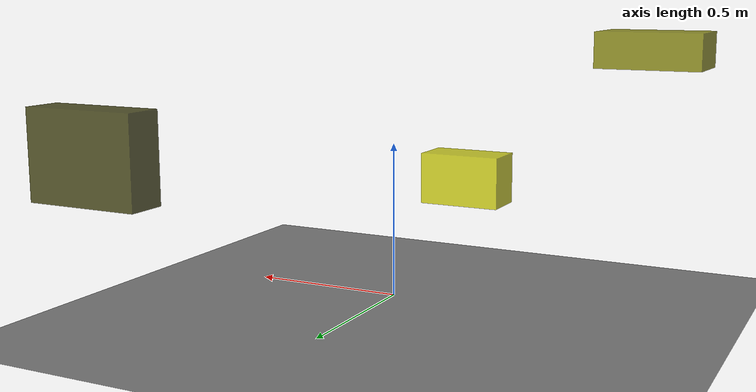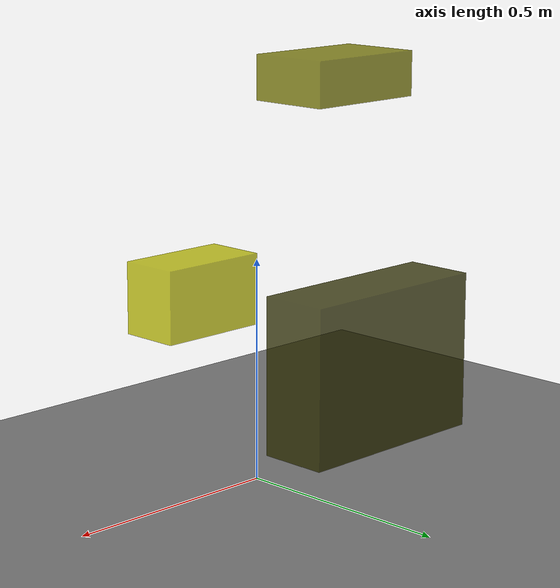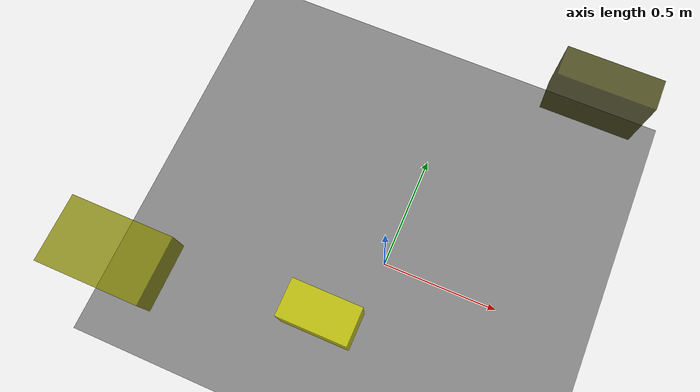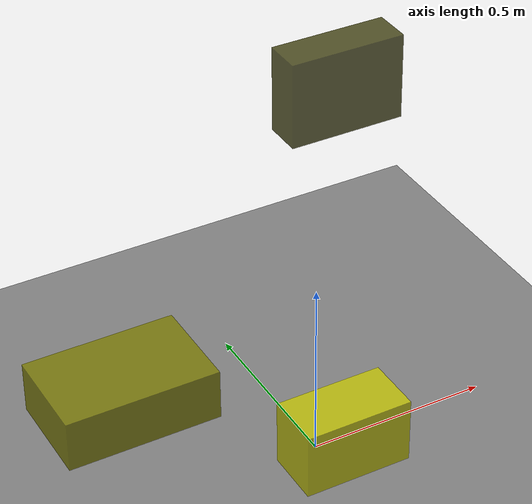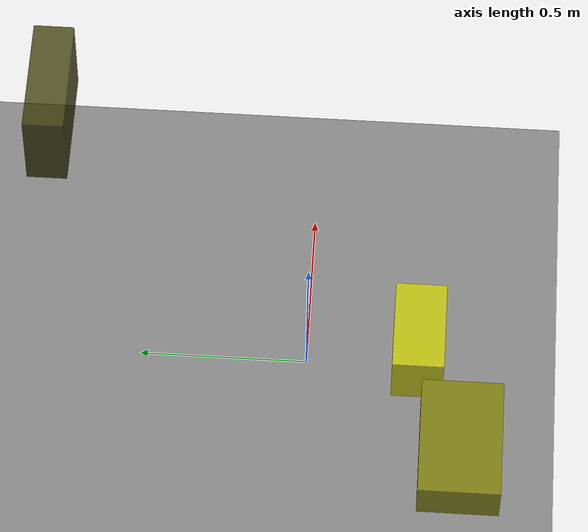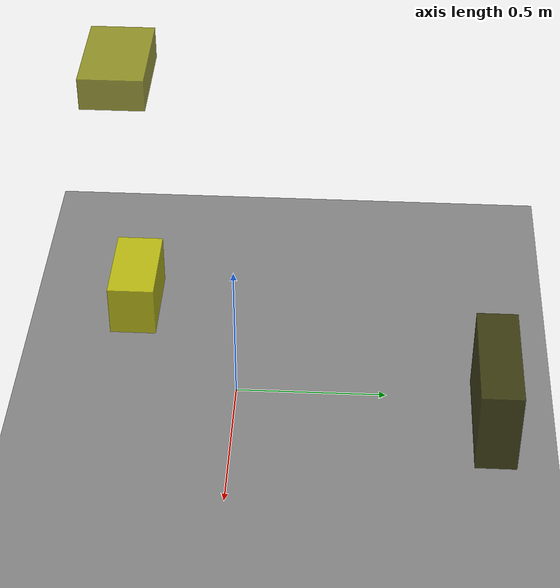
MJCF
<?xml version="1.0"?>
<mujoco model="obstacle_scene">
  <compiler angle="radian" coordinate="local"/>
  <option timestep="0.001" gravity="0 0 -9.81"/>

  <asset>
    <material name="obstacle_mat" rgba="0.8 0.8 0.0 0.8"/>
    <material name="ground_mat" rgba="0.5 0.5 0.5 1"/>
  </asset>

  <worldbody>
    <!-- Ground plane -->
    <geom name="ground" type="plane" size="3 3 0.1" material="ground_mat"/>

    <!-- Obstacles -->
    <body name="obstacle_0" pos="0.527591 0.797813 0.535684">
      <geom name="obs_0" type="box" size="0.179663 0.059905 0.134618" rgba="0.2 0.2 0.0 0.8"/>
    </body>
    <body name="obstacle_1" pos="-0.719562 -0.444385 0.795272">
      <geom name="obs_1" type="box" size="0.171200 0.110448 0.058856" rgba="0.5 0.5 0.0 0.8"/>
    </body>
    <body name="obstacle_2" pos="-0.114915 -0.329066 0.346439">
      <geom name="obs_2" type="box" size="0.138274 0.073854 0.086467" rgba="0.8 0.8 0.0 0.8"/>
    </body>
  </worldbody>
</mujoco>
